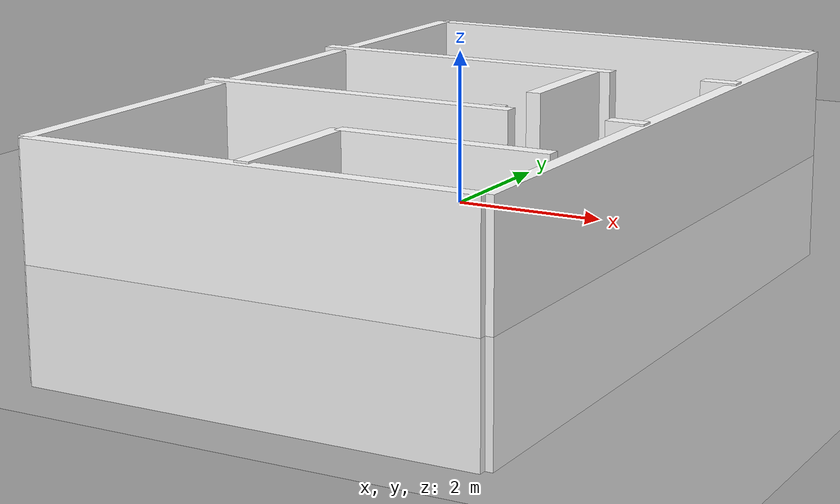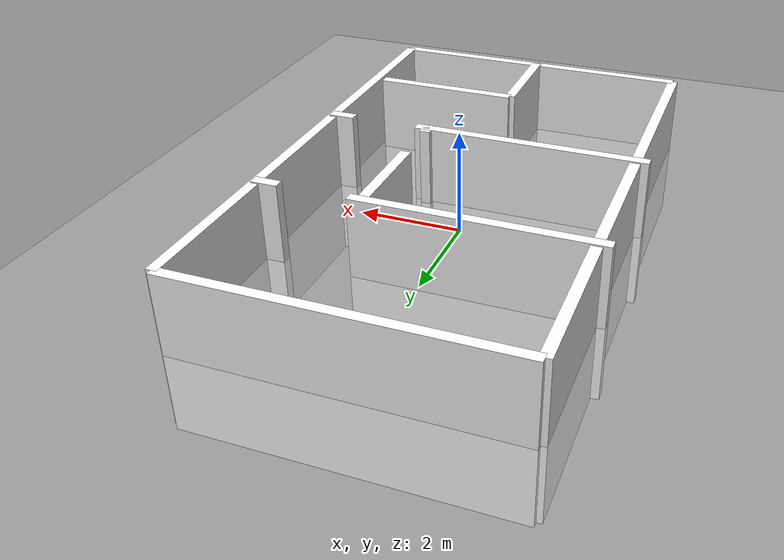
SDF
<?xml version="1.0" ?>
<sdf version="1.8">

  <!--
    Определяем мир (world) под названием "Moving_robot".
    Внутри указываем параметры физики, плагины для симуляции, освещение (sun) и объекты (models).
  -->
  <world name="Moving_robot">

    <physics name="1ms" type="ignored">
      <max_step_size>0.001</max_step_size>
      <real_time_factor>1.0</real_time_factor>
    </physics>

    <plugin filename="gz-sim-physics-system" name="gz::sim::systems::Physics"/>
    	<plugin
		filename="gz-sim-sensors-system"
		name="gz::sim::systems::Sensors">
	  <!-- Обычно указывают движок рендеринга -->
	  <render_engine>ogre2</render_engine>
	</plugin>
    <plugin filename="gz-sim-user-commands-system" name="gz::sim::systems::UserCommands"/>
    <plugin filename="gz-sim-scene-broadcaster-system" name="gz::sim::systems::SceneBroadcaster"/>

    <!--
      Настраиваем источник света "sun" (солнечный свет) с заданным направлением,
      интенсивностью (diffuse, specular) и другими параметрами.
    -->
    <light type="directional" name="sun">
      <cast_shadows>true</cast_shadows>
      <pose>0 0 10 0 0 0</pose>
      <diffuse>0.8 0.8 0.8 1</diffuse>
      <specular>0.2 0.2 0.2 1</specular>
      <attenuation>
        <range>1000</range>
        <constant>0.9</constant>
        <linear>0.01</linear>
        <quadratic>0.001</quadratic>
      </attenuation>
      <direction>-0.5 0.1 -0.9</direction>
    </light>

    <!--
      Создаём "землю" (ground_plane) — большая плоскость для пола.
      static=true означает, что объект не участвует в движении, он статичен.
    -->
    <model name="ground_plane">
      <static>true</static>
      <link name="link">
        <collision name="collision">
          <geometry>
            <plane>
              <normal>0 0 1</normal>
            </plane>
          </geometry>
        </collision>
        <visual name="visual">
          <geometry>
            <plane>
              <normal>0 0 1</normal>
              <size>6 10</size>
            </plane>
          </geometry>
          <material>
            <ambient>0.8 0.8 0.8 1</ambient>
            <diffuse>0.8 0.8 0.8 1</diffuse>
            <specular>0.8 0.8 0.8 1</specular>
          </material>
        </visual>
      </link>
    </model>

    <!--
      Модель робота: "my_robot". У него корневым звеном (canonical_link) выступает "chassis".
      pose relative_to='world' означает, что робот будет размещён в абсолютных координатах.
    -->
    <model name='my_robot' canonical_link='chassis'>
      <pose relative_to='world'>-2 4 0 0 0 0</pose>

      <link name='chassis'>
        <pose relative_to='__model__'>0 0 0.1 0 0 0</pose>
        <inertial>
          <mass>25</mass>
          <inertia>
            <ixx>0.126164</ixx>
            <ixy>0</ixy>
            <ixz>0</ixz>
            <iyy>0.416519</iyy>
            <iyz>0</iyz>
            <izz>0.481014</izz>
          </inertia>
        </inertial>
        <visual name='visual'>
          <geometry>
            <box>
              <size>0.24 0.14 0.03</size>
            </box>
          </geometry>
          <material>
            <ambient>0.0 0.0 1.0 1</ambient>
            <diffuse>0.0 0.0 1.0 1</diffuse>
            <specular>0.0 0.0 1.0 1</specular>
          </material>
        </visual>
        <collision name='collision'>
          <!-- collision важна для реакций физики (сталкивание с объектами) -->
          <geometry>
            <box>
              <size>0.24 0.14 0.03</size>
            </box>
          </geometry>
        </collision>
      </link>
      <link name='left_wheel'>
        <pose relative_to="chassis">0.06 0.04 -0.015 -1.5707 0 0</pose>
        <inertial>
          <mass>2.5</mass>
          <inertia>
            <ixx>0.145833</ixx>
            <ixy>0</ixy>
            <ixz>0</ixz>
            <iyy>0.145833</iyy>
            <iyz>0</iyz>
            <izz>0.125</izz>
          </inertia>
        </inertial>
        <visual name='visual'>
          <geometry>
            <cylinder>
              <radius>0.0335</radius>
              <length>0.025</length>
            </cylinder>
          </geometry>
          <material>
            <ambient>1.0 0.0 0.0 1</ambient>
            <diffuse>1.0 0.0 0.0 1</diffuse>
            <specular>1.0 0.0 0.0 1</specular>
          </material>
        </visual>
        <collision name='collision'>
          <geometry>
            <cylinder>
              <radius>0.0335</radius>
              <length>0.025</length>
            </cylinder>
          </geometry>
        </collision>
      </link>

      <!--
        Правое колесо (right_wheel).
        Аналогично левому, только y=-.
      -->
      <link name='right_wheel'>
        <pose relative_to="chassis">0.06 -0.04 -0.015 -1.5707 0 0</pose>
        <inertial>
          <mass>2.5</mass>
          <inertia>
            <ixx>0.145833</ixx>
            <ixy>0</ixy>
            <ixz>0</ixz>
            <iyy>0.145833</iyy>
            <iyz>0</iyz>
            <izz>0.125</izz>
          </inertia>
        </inertial>
        <visual name='visual'>
          <geometry>
            <cylinder>
              <radius>0.0335</radius>
              <length>0.025</length>
            </cylinder>
          </geometry>
          <material>
            <ambient>1.0 0.0 0.0 1</ambient>
            <diffuse>1.0 0.0 0.0 1</diffuse>
            <specular>1.0 0.0 0.0 1</specular>
          </material>
        </visual>
        <collision name='collision'>
          <geometry>
            <cylinder>
              <radius>0.0335</radius>
              <length>0.025</length>
            </cylinder>
          </geometry>
        </collision>
      </link>

      <!--
        frame "caster_frame" привязан к шасси (chassis).
        Это точка, к которой затем крепится link caster (шарообразная опора).
      -->
      <!--
        Кастер (caster) - задний опорный шарик.
        Расположен на frame="caster_frame".
        Масса, инерция - условные.
      -->

      <!--
        floor1 - "первый этаж" (промежуточная платформа),
        поднят над шасси на 0.065 м.
        Масса и габариты - условные.
      -->

	<frame name="caster_frame" attached_to='chassis'>
        <pose>-0.06 0 -0.015 0 0 0</pose>
      </frame>

	  <link name='caster'>
        <pose relative_to='caster_frame'/>
        <inertial>
          <mass>6</mass>
          <inertia>
            <ixx>0.1</ixx>
            <ixy>0</ixy>
            <ixz>0</ixz>
            <iyy>0.1</iyy>
            <iyz>0</iyz>
            <izz>0.1</izz>
          </inertia>
        </inertial>
        <visual name='visual'>
          <geometry>
            <sphere>
              <radius>0.0335</radius>
            </sphere>
          </geometry>
          <material>
            <ambient>0.0 1 0.0 1</ambient>
            <diffuse>0.0 1 0.0 1</diffuse>
            <specular>0.0 1 0.0 1</specular>
          </material>
        </visual>
        <collision name='collision'>
          <geometry>
            <sphere>
              <radius>0.0335</radius>
            </sphere>
          </geometry>
        </collision>
      </link>

	<joint name='caster_wheel' type='ball'>
        <parent>chassis</parent>
        <child>caster</child>
      </joint>
      <!--
        lidar_link - цилиндр, имитирующий 2D-лидар.
        Расположен на +0.04 над floor2.
      -->

      <!--
        Ось вращения левого колеса (left_wheel_joint) - revolute.
        joint подключает parent=chassis, child=left_wheel.
      -->
      <joint name='left_wheel_joint' type='revolute'>
        <pose relative_to='left_wheel'/>
        <parent>chassis</parent>
        <child>left_wheel</child>
        <axis>
          <xyz expressed_in='__model__'>0 1 0</xyz>
          <limit>
            <lower>-1.79769e+308</lower>
            <upper>1.79769e+308</upper>
          </limit>
        </axis>
      </joint>

      <!--
        Аналогично для правого колеса (right_wheel_joint).
      -->
      <joint name='right_wheel_joint' type='revolute'>
        <pose relative_to='right_wheel'/>
        <parent>chassis</parent>
        <child>right_wheel</child>
        <axis>
          <xyz expressed_in='__model__'>0 1 0</xyz>
          <limit>
            <lower>-1.79769e+308</lower>
            <upper>1.79769e+308</upper>
          </limit>
        </axis>
      </joint>

      <!-- Передняя левая стойка -->

      <!--
        Соединение caster'а (задний шар) с шасси через шаровой joint (type='ball').
      -->

      <link name="lidar_link">
        <pose relative_to="chassis">0 0 0.1 0 0 0</pose>
        <inertial>
          <mass>0.2</mass>
          <inertia>
            <ixx>0.001</ixx>
            <ixy>0</ixy>
            <ixz>0</ixz>
            <iyy>0.001</iyy>
            <iyz>0</iyz>
            <izz>0.001</izz>
          </inertia>
        </inertial>
        <visual name="lidar_visual">
          <geometry>
            <cylinder>
              <radius>0.035</radius>
              <length>0.025</length>
            </cylinder>
          </geometry>
          <material>
            <ambient>0 0  0  1</ambient>
            <diffuse>0  0  0  1</diffuse>
          </material>
        </visual>
		<sensor name="lidar_sensor" type="gpu_ray">
		  <frame_id>lidar_link</frame_id>
		  <pose>0 0 0.1 0 0 0</pose>
		  <topic>/scan</topic>
		  <update_rate>5</update_rate>
		  <ray>
			<scan>
			  <horizontal>
				<samples>360</samples>
				<resolution>1</resolution>
				<min_angle>-3.14</min_angle>
				<max_angle>3.14</max_angle>
			  </horizontal>
			  <vertical>
				<samples>1</samples>
				<resolution>0.01</resolution>
				<min_angle>0</min_angle>
				<max_angle>0</max_angle>
			  </vertical>
			</scan>
			<range>
			  <min>0.08</min>
			  <max>10.0</max>
			  <resolution>0.01</resolution>
			</range>
			<noise>
			  <type>gaussian</type>
			  <mean>0.0</mean>
			  <stddev>0.01</stddev>
			</noise>
		  </ray>
		  <always_on>true</always_on>
		  <visualize>true</visualize>
		</sensor>
        <collision name="lidar_collision">
          <geometry>
            <cylinder>
              <radius>0.035</radius>
              <length>0.05</length>
            </cylinder>
          </geometry>
        </collision>
      </link>
      <joint name="lidar_joint" type="fixed">
        <parent>chassis</parent>
        <child>lidar_link</child>
      </joint>
      <plugin filename="gz-sim-diff-drive-system" name="gz::sim::systems::DiffDrive">
        <left_joint>left_wheel_joint</left_joint>
        <right_joint>right_wheel_joint</right_joint>
        <wheel_separation>0.08</wheel_separation>
        <wheel_radius>0.0335</wheel_radius>
        <odom_publish_frequency>50</odom_publish_frequency>
        <topic>cmd_vel</topic>
        <wheel_slip>0.05</wheel_slip>
      </plugin>
    </model>

	<model name="white_wall1">
	    <static>true</static>
      <pose>0 5 0 0 0 0</pose>
      <link name="cube_link">
        <visual name="visual">
          <geometry>
            <box>
              <size>6 0.2 3</size>
            </box>
          </geometry>
          <material>
            <ambient>1 1 1 1</ambient>
            <diffuse>1 1 1 1</diffuse>
            <specular>1 1 1 1</specular>
          </material>
        </visual>
        <collision name="collision">
          <geometry>
            <box>
              <size>6 0.2 3</size>
            </box>
          </geometry>
        </collision>
      </link>
    </model>

	<model name="white_wall2">
	    <static>true</static>
      <pose>0 -5 0 0 0 0</pose>
      <link name="cube_link">
        <visual name="visual">
          <geometry>
            <box>
              <size>6 0.2 3</size>
            </box>
          </geometry>
          <material>
            <ambient>1 1 1 1</ambient>
            <diffuse>1 1 1 1</diffuse>
            <specular>1 1 1 1</specular>
          </material>
        </visual>
        <collision name="collision">
          <geometry>
            <box>
              <size>6 0.2 3</size>
            </box>
          </geometry>
        </collision>
      </link>
    </model>

	<model name="white_wall3">
	    <static>true</static>
      <pose>3 0 0 0 0 0</pose>
      <link name="cube_link">
        <visual name="visual">
          <geometry>
            <box>
              <size>0.2 10 3</size>
            </box>
          </geometry>
          <material>
            <ambient>1 1 1 1</ambient>
            <diffuse>1 1 1 1</diffuse>
            <specular>1 1 1 1</specular>
          </material>
        </visual>
        <collision name="collision">
          <geometry>
            <box>
              <size>0.2 10 3</size>
            </box>
          </geometry>
        </collision>
      </link>
    </model>

	<model name="white_wall4">
	    <static>true</static>
      <pose>-1 2 0.025 0 0 0</pose>
      <link name="cube_link">
        <visual name="visual">
          <geometry>
            <box>
              <size>4.5 0.2 3</size>
            </box>
          </geometry>
          <material>
            <ambient>1 1 1 1</ambient>
            <diffuse>1 1 1 1</diffuse>
            <specular>1 1 1 1</specular>
          </material>
        </visual>
        <collision name="collision">
          <geometry>
            <box>
              <size>4.5 0.2 3</size>
            </box>
          </geometry>
        </collision>
      </link>
    </model>

	<model name="white_wall5">
	    <static>true</static>
      <pose>-3 0 0 0 0 0</pose>
      <link name="cube_link">
        <visual name="visual">
          <geometry>
            <box>
              <size>0.2 10 3</size>
            </box>
          </geometry>
          <material>
            <ambient>1 1 1 1</ambient>
            <diffuse>1 1 1 1</diffuse>
            <specular>1 1 1 1</specular>
          </material>
        </visual>
        <collision name="collision">
          <geometry>
            <box>
              <size>0.2 10 3</size>
            </box>
          </geometry>
        </collision>
      </link>
    </model>

	<model name="white_wall6">
	    <static>true</static>
      <pose>-1 -1 0.025 0 0 0</pose>
      <link name="cube_link">
        <visual name="visual">
          <geometry>
            <box>
              <size>4.5 0.2 3</size>
            </box>
          </geometry>
          <material>
            <ambient>1 1 1 1</ambient>
            <diffuse>1 1 1 1</diffuse>
            <specular>1 1 1 1</specular>
          </material>
        </visual>
        <collision name="collision">
          <geometry>
            <box>
              <size>4.5 0.2 3</size>
            </box>
          </geometry>
        </collision>
      </link>
    </model>

    <model name="white_wall7">
	    <static>true</static>
      <pose>1.4 -3 0.025 0 0 0</pose>
      <link name="cube_link">
        <visual name="visual">
          <geometry>
            <box>
              <size>2.8 0.2 3</size>
            </box>
          </geometry>
          <material>
            <ambient>1 1 1 1</ambient>
            <diffuse>1 1 1 1</diffuse>
            <specular>1 1 1 1</specular>
          </material>
        </visual>
        <collision name="collision">
          <geometry>
            <box>
              <size>2.8 0.2 3</size>
            </box>
          </geometry>
        </collision>
      </link>
    </model>

    <model name="white_wall8">
	    <static>true</static>
      <pose>0 -4 0.025 0 0 0</pose>
      <link name="cube_link">
        <visual name="visual">
          <geometry>
            <box>
              <size>0.2 2 3</size>
            </box>
          </geometry>
          <material>
            <ambient>1 1 1 1</ambient>
            <diffuse>1 1 1 1</diffuse>
            <specular>1 1 1 1</specular>
          </material>
        </visual>
        <collision name="collision">
          <geometry>
            <box>
              <size>0.2 2 3</size>
            </box>
          </geometry>
        </collision>
      </link>
    </model>

    <model name="white_wall9">
	    <static>true</static>
      <pose>1 1 0.025 0 0 0</pose>
      <link name="cube_link">
        <visual name="visual">
          <geometry>
            <box>
              <size>0.2 1.8 3</size>
            </box>
          </geometry>
          <material>
            <ambient>1 1 1 1</ambient>
            <diffuse>1 1 1 1</diffuse>
            <specular>1 1 1 1</specular>
          </material>
        </visual>
        <collision name="collision">
          <geometry>
            <box>
              <size>0.2 1.8 3</size>
            </box>
          </geometry>
        </collision>
      </link>
    </model>

    <model name="white_wall10">
	    <static>true</static>
      <pose>1 -0.9 0.025 0 0 0</pose>
      <link name="cube_link">
        <visual name="visual">
          <geometry>
            <box>
              <size>0.2 0.2 3</size>
            </box>
          </geometry>
          <material>
            <ambient>1 1 1 1</ambient>
            <diffuse>1 1 1 1</diffuse>
            <specular>1 1 1 1</specular>
          </material>
        </visual>
        <collision name="collision">
          <geometry>
            <box>
              <size>0.2 0.2 3</size>
            </box>
          </geometry>
        </collision>
      </link>
    </model>

    <model name="white_wall11">
	    <static>true</static>
      <pose>2.8 2 0.025 0 0 0</pose>
      <link name="cube_link">
        <visual name="visual">
          <geometry>
            <box>
              <size>0.5 0.2 3</size>
            </box>
          </geometry>
          <material>
            <ambient>1 1 1 1</ambient>
            <diffuse>1 1 1 1</diffuse>
            <specular>1 1 1 1</specular>
          </material>
        </visual>
        <collision name="collision">
          <geometry>
            <box>
              <size>0.5 0.2 3</size>
            </box>
          </geometry>
        </collision>
      </link>
    </model>

    <model name="white_wall12">
	    <static>true</static>
      <pose>2.8 -1 0.025 0 0 0</pose>
      <link name="cube_link">
        <visual name="visual">
          <geometry>
            <box>
              <size>0.5 0.2 3</size>
            </box>
          </geometry>
          <material>
            <ambient>1 1 1 1</ambient>
            <diffuse>1 1 1 1</diffuse>
            <specular>1 1 1 1</specular>
          </material>
        </visual>
        <collision name="collision">
          <geometry>
            <box>
              <size>0.5 0.2 3</size>
            </box>
          </geometry>
        </collision>
      </link>
    </model>
    <!--
      Плагины для движения робота с клавиатуры (TriggeredPublisher).
      При нажатии определённых клавиш (16777234, 16777235 и т.д.)
      публикуется Twist на топик /cmd_vel.
    -->
    <!-- Moving Left-->
    <plugin filename="gz-sim-triggered-publisher-system" name="gz::sim::systems::TriggeredPublisher">
      <input type="gz.msgs.Int32" topic="/keyboard/keypress">
        <match field="data">16777234</match>
      </input>
      <output type="gz.msgs.Twist" topic="/cmd_vel">
        linear: {x: 0.0}, angular: {z: 0.5}
      </output>
    </plugin>

    <!-- Moving Forward-->
    <plugin filename="gz-sim-triggered-publisher-system" name="gz::sim::systems::TriggeredPublisher">
      <input type="gz.msgs.Int32" topic="/keyboard/keypress">
        <match field="data">16777235</match>
      </input>
      <output type="gz.msgs.Twist" topic="/cmd_vel">
        linear: {x: 0.5}, angular: {z: 0.0}
      </output>
    </plugin>

    <!-- Moving Right-->
    <plugin filename="gz-sim-triggered-publisher-system" name="gz::sim::systems::TriggeredPublisher">
      <input type="gz.msgs.Int32" topic="/keyboard/keypress">
        <match field="data">16777236</match>
      </input>
      <output type="gz.msgs.Twist" topic="/cmd_vel">
        linear: {x: 0.0}, angular: {z: -0.5}
      </output>
    </plugin>

    <!-- Moving Backward-->
    <plugin filename="gz-sim-triggered-publisher-system" name="gz::sim::systems::TriggeredPublisher">
      <input type="gz.msgs.Int32" topic="/keyboard/keypress">
        <match field="data">16777237</match>
      </input>
      <output type="gz.msgs.Twist" topic="/cmd_vel">
        linear: {x: -0.5}, angular: {z: 0.0}
      </output>
    </plugin>

  </world>
</sdf>
